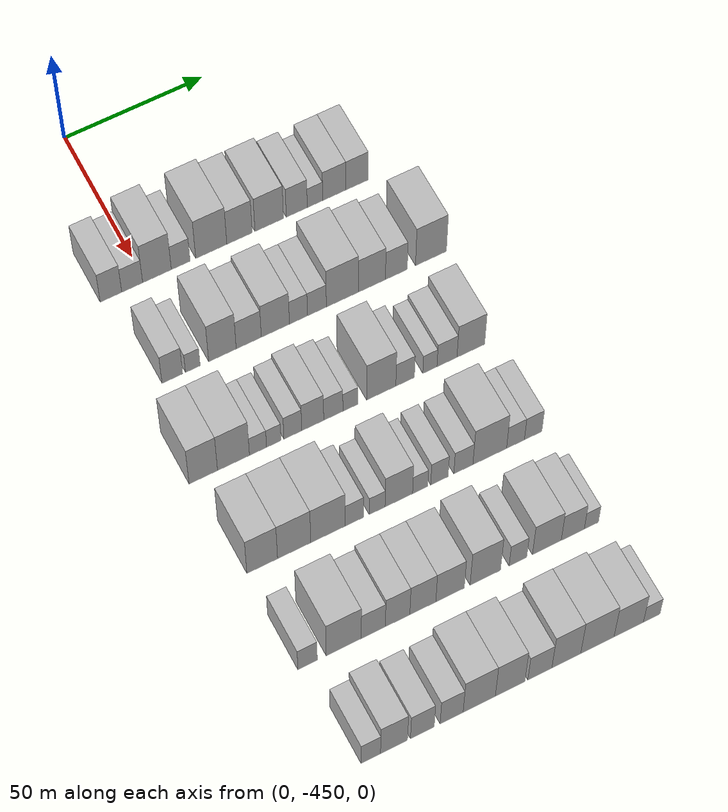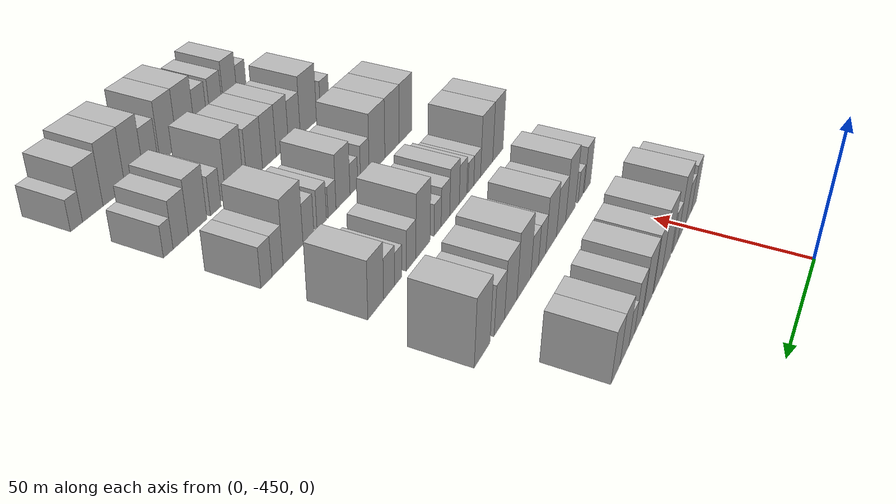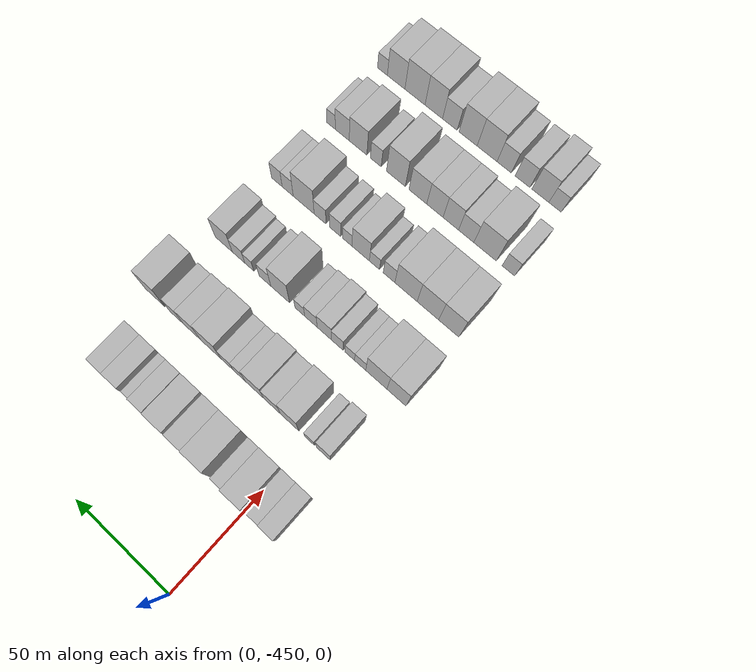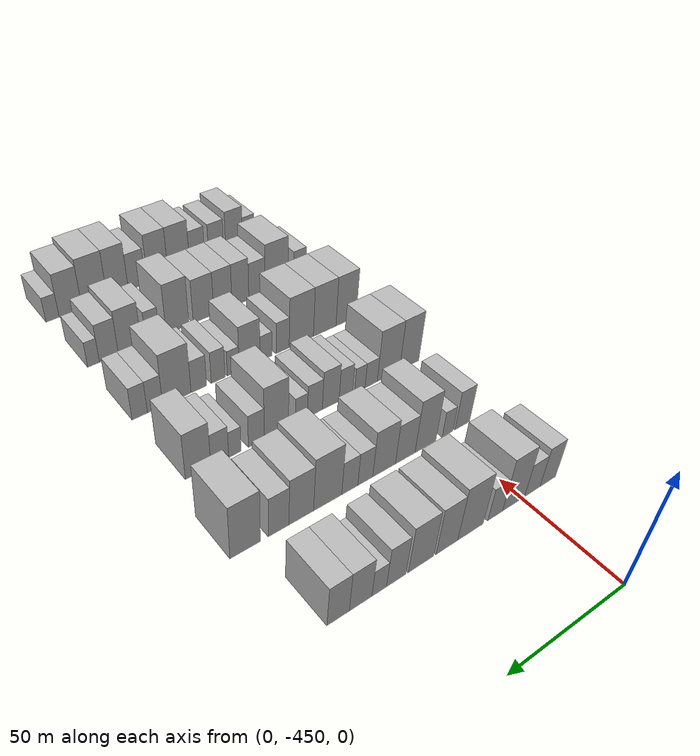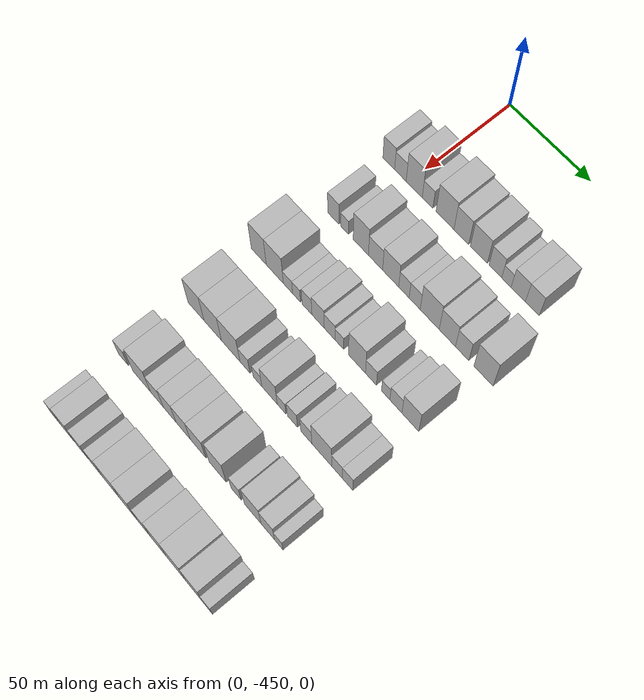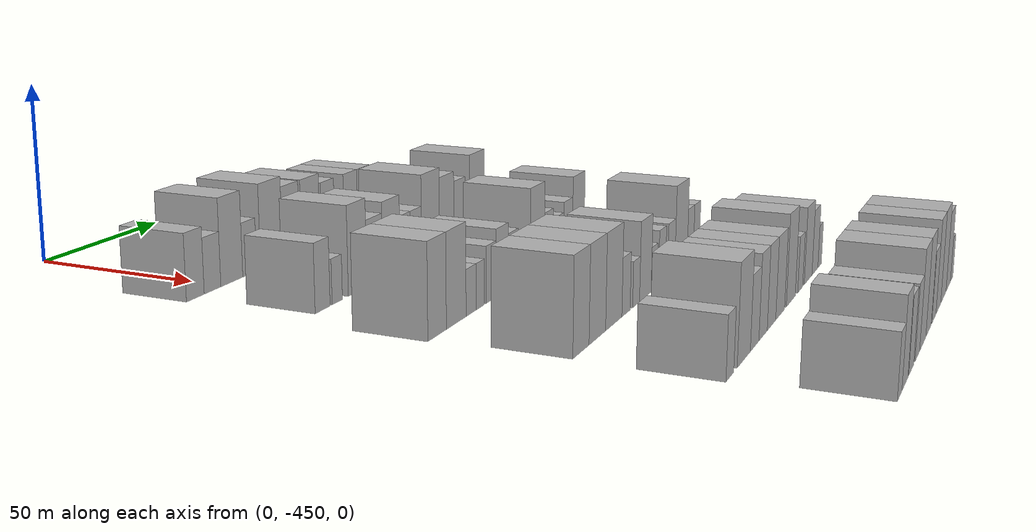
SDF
<sdf version="1.6">
 <world name="default">
  <model name="building_14">
   <static>1</static>
   <pose>50.0000 -462.1578 0 0.000000 0.000000 0.000000</pose>
   <link name="link">
    <pose>0 0 9.00 0 0 0</pose>
    <collision name="collision"><geometry><box><size>20.0000 7.6414 18.0000</size></box></geometry></collision>
    <visual name="visual">
     <cast_shadows>0</cast_shadows>
     <geometry><box><size>20.0000 7.6414 18.0000</size></box></geometry>
     <material>
      <script>
       <uri>model://HANNAS_wall/materials/scripts</uri>
       <uri>model://HANNAS_wall/materials/textures</uri>
       <name>vrc/HANNAS_wall</name>
      </script>
     </material>
    </visual>
   </link>
  </model>
  <model name="building_15">
   <static>1</static>
   <pose>50.0000 -454.6334 0 0.000000 0.000000 0.000000</pose>
   <link name="link">
    <pose>0 0 7.50 0 0 0</pose>
    <collision name="collision"><geometry><box><size>20.0000 7.4073 15.0000</size></box></geometry></collision>
    <visual name="visual">
     <cast_shadows>0</cast_shadows>
     <geometry><box><size>20.0000 7.4073 15.0000</size></box></geometry>
     <material>
      <script>
       <uri>model://HANNAS_wall/materials/scripts</uri>
       <uri>model://HANNAS_wall/materials/textures</uri>
       <name>vrc/HANNAS_wall</name>
      </script>
     </material>
    </visual>
   </link>
  </model>
  <model name="building_16">
   <static>1</static>
   <pose>50.0000 -445.8312 0 0.000000 0.000000 0.000000</pose>
   <link name="link">
    <pose>0 0 12.00 0 0 0</pose>
    <collision name="collision"><geometry><box><size>20.0000 10.1972 24.0000</size></box></geometry></collision>
    <visual name="visual">
     <cast_shadows>0</cast_shadows>
     <geometry><box><size>20.0000 10.1972 24.0000</size></box></geometry>
     <material>
      <script>
       <uri>model://HANNAS_wall/materials/scripts</uri>
       <uri>model://HANNAS_wall/materials/textures</uri>
       <name>vrc/HANNAS_wall</name>
      </script>
     </material>
    </visual>
   </link>
  </model>
  <model name="building_17">
   <static>1</static>
   <pose>50.0000 -437.3728 0 0.000000 0.000000 0.000000</pose>
   <link name="link">
    <pose>0 0 7.50 0 0 0</pose>
    <collision name="collision"><geometry><box><size>20.0000 6.7195 15.0000</size></box></geometry></collision>
    <visual name="visual">
     <cast_shadows>0</cast_shadows>
     <geometry><box><size>20.0000 6.7195 15.0000</size></box></geometry>
     <material>
      <script>
       <uri>model://HANNAS_wall/materials/scripts</uri>
       <uri>model://HANNAS_wall/materials/textures</uri>
       <name>vrc/HANNAS_wall</name>
      </script>
     </material>
    </visual>
   </link>
  </model>
  <model name="building_18">
   <static>1</static>
   <pose>50.0000 -426.4375 0 0.000000 0.000000 0.000000</pose>
   <link name="link">
    <pose>0 0 12.00 0 0 0</pose>
    <collision name="collision"><geometry><box><size>20.0000 11.1511 24.0000</size></box></geometry></collision>
    <visual name="visual">
     <cast_shadows>0</cast_shadows>
     <geometry><box><size>20.0000 11.1511 24.0000</size></box></geometry>
     <material>
      <script>
       <uri>model://HANNAS_wall/materials/scripts</uri>
       <uri>model://HANNAS_wall/materials/textures</uri>
       <name>vrc/HANNAS_wall</name>
      </script>
     </material>
    </visual>
   </link>
  </model>
  <model name="building_19">
   <static>1</static>
   <pose>50.0000 -416.2968 0 0.000000 0.000000 0.000000</pose>
   <link name="link">
    <pose>0 0 10.50 0 0 0</pose>
    <collision name="collision"><geometry><box><size>20.0000 9.1303 21.0000</size></box></geometry></collision>
    <visual name="visual">
     <cast_shadows>0</cast_shadows>
     <geometry><box><size>20.0000 9.1303 21.0000</size></box></geometry>
     <material>
      <script>
       <uri>model://HANNAS_wall/materials/scripts</uri>
       <uri>model://HANNAS_wall/materials/textures</uri>
       <name>vrc/HANNAS_wall</name>
      </script>
     </material>
    </visual>
   </link>
  </model>
  <model name="building_20">
   <static>1</static>
   <pose>50.0000 -405.5676 0 0.000000 0.000000 0.000000</pose>
   <link name="link">
    <pose>0 0 10.50 0 0 0</pose>
    <collision name="collision"><geometry><box><size>20.0000 10.3282 21.0000</size></box></geometry></collision>
    <visual name="visual">
     <cast_shadows>0</cast_shadows>
     <geometry><box><size>20.0000 10.3282 21.0000</size></box></geometry>
     <material>
      <script>
       <uri>model://HANNAS_wall/materials/scripts</uri>
       <uri>model://HANNAS_wall/materials/textures</uri>
       <name>vrc/HANNAS_wall</name>
      </script>
     </material>
    </visual>
   </link>
  </model>
  <model name="building_21">
   <static>1</static>
   <pose>50.0000 -395.5879 0 0.000000 0.000000 0.000000</pose>
   <link name="link">
    <pose>0 0 9.00 0 0 0</pose>
    <collision name="collision"><geometry><box><size>20.0000 7.6313 18.0000</size></box></geometry></collision>
    <visual name="visual">
     <cast_shadows>0</cast_shadows>
     <geometry><box><size>20.0000 7.6313 18.0000</size></box></geometry>
     <material>
      <script>
       <uri>model://HANNAS_wall/materials/scripts</uri>
       <uri>model://HANNAS_wall/materials/textures</uri>
       <name>vrc/HANNAS_wall</name>
      </script>
     </material>
    </visual>
   </link>
  </model>
  <model name="building_22">
   <static>1</static>
   <pose>50.0000 -388.9683 0 0.000000 0.000000 0.000000</pose>
   <link name="link">
    <pose>0 0 6.00 0 0 0</pose>
    <collision name="collision"><geometry><box><size>20.0000 5.6079 12.0000</size></box></geometry></collision>
    <visual name="visual">
     <cast_shadows>0</cast_shadows>
     <geometry><box><size>20.0000 5.6079 12.0000</size></box></geometry>
     <material>
      <script>
       <uri>model://HANNAS_wall/materials/scripts</uri>
       <uri>model://HANNAS_wall/materials/textures</uri>
       <name>vrc/HANNAS_wall</name>
      </script>
     </material>
    </visual>
   </link>
  </model>
  <model name="building_23">
   <static>1</static>
   <pose>50.0000 -381.9288 0 0.000000 0.000000 0.000000</pose>
   <link name="link">
    <pose>0 0 9.00 0 0 0</pose>
    <collision name="collision"><geometry><box><size>20.0000 8.4710 18.0000</size></box></geometry></collision>
    <visual name="visual">
     <cast_shadows>0</cast_shadows>
     <geometry><box><size>20.0000 8.4710 18.0000</size></box></geometry>
     <material>
      <script>
       <uri>model://HANNAS_wall/materials/scripts</uri>
       <uri>model://HANNAS_wall/materials/textures</uri>
       <name>vrc/HANNAS_wall</name>
      </script>
     </material>
    </visual>
   </link>
  </model>
  <model name="building_24">
   <static>1</static>
   <pose>50.0000 -373.6209 0 0.000000 0.000000 0.000000</pose>
   <link name="link">
    <pose>0 0 9.00 0 0 0</pose>
    <collision name="collision"><geometry><box><size>20.0000 8.1449 18.0000</size></box></geometry></collision>
    <visual name="visual">
     <cast_shadows>0</cast_shadows>
     <geometry><box><size>20.0000 8.1449 18.0000</size></box></geometry>
     <material>
      <script>
       <uri>model://HANNAS_wall/materials/scripts</uri>
       <uri>model://HANNAS_wall/materials/textures</uri>
       <name>vrc/HANNAS_wall</name>
      </script>
     </material>
    </visual>
   </link>
  </model>
  <model name="building_138">
   <static>1</static>
   <pose>85.0000 -457.6030 0 0.000000 0.000000 0.000000</pose>
   <link name="link">
    <pose>0 0 9.00 0 0 0</pose>
    <collision name="collision"><geometry><box><size>20.0000 7.2241 18.0000</size></box></geometry></collision>
    <visual name="visual">
     <cast_shadows>0</cast_shadows>
     <geometry><box><size>20.0000 7.2241 18.0000</size></box></geometry>
     <material>
      <script>
       <uri>model://HANNAS_wall/materials/scripts</uri>
       <uri>model://HANNAS_wall/materials/textures</uri>
       <name>vrc/HANNAS_wall</name>
      </script>
     </material>
    </visual>
   </link>
  </model>
  <model name="building_139">
   <static>1</static>
   <pose>85.0000 -450.4035 0 0.000000 0.000000 0.000000</pose>
   <link name="link">
    <pose>0 0 6.00 0 0 0</pose>
    <collision name="collision"><geometry><box><size>20.0000 5.1749 12.0000</size></box></geometry></collision>
    <visual name="visual">
     <cast_shadows>0</cast_shadows>
     <geometry><box><size>20.0000 5.1749 12.0000</size></box></geometry>
     <material>
      <script>
       <uri>model://HANNAS_wall/materials/scripts</uri>
       <uri>model://HANNAS_wall/materials/textures</uri>
       <name>vrc/HANNAS_wall</name>
      </script>
     </material>
    </visual>
   </link>
  </model>
  <model name="building_140">
   <static>1</static>
   <pose>85.0000 -439.9599 0 0.000000 0.000000 0.000000</pose>
   <link name="link">
    <pose>0 0 12.00 0 0 0</pose>
    <collision name="collision"><geometry><box><size>20.0000 9.7124 24.0000</size></box></geometry></collision>
    <visual name="visual">
     <cast_shadows>0</cast_shadows>
     <geometry><box><size>20.0000 9.7124 24.0000</size></box></geometry>
     <material>
      <script>
       <uri>model://HANNAS_wall/materials/scripts</uri>
       <uri>model://HANNAS_wall/materials/textures</uri>
       <name>vrc/HANNAS_wall</name>
      </script>
     </material>
    </visual>
   </link>
  </model>
  <model name="building_141">
   <static>1</static>
   <pose>85.0000 -430.6533 0 0.000000 0.000000 0.000000</pose>
   <link name="link">
    <pose>0 0 9.00 0 0 0</pose>
    <collision name="collision"><geometry><box><size>20.0000 8.9007 18.0000</size></box></geometry></collision>
    <visual name="visual">
     <cast_shadows>0</cast_shadows>
     <geometry><box><size>20.0000 8.9007 18.0000</size></box></geometry>
     <material>
      <script>
       <uri>model://HANNAS_wall/materials/scripts</uri>
       <uri>model://HANNAS_wall/materials/textures</uri>
       <name>vrc/HANNAS_wall</name>
      </script>
     </material>
    </visual>
   </link>
  </model>
  <model name="building_142">
   <static>1</static>
   <pose>85.0000 -421.2011 0 0.000000 0.000000 0.000000</pose>
   <link name="link">
    <pose>0 0 10.50 0 0 0</pose>
    <collision name="collision"><geometry><box><size>20.0000 10.0036 21.0000</size></box></geometry></collision>
    <visual name="visual">
     <cast_shadows>0</cast_shadows>
     <geometry><box><size>20.0000 10.0036 21.0000</size></box></geometry>
     <material>
      <script>
       <uri>model://HANNAS_wall/materials/scripts</uri>
       <uri>model://HANNAS_wall/materials/textures</uri>
       <name>vrc/HANNAS_wall</name>
      </script>
     </material>
    </visual>
   </link>
  </model>
  <model name="building_143">
   <static>1</static>
   <pose>85.0000 -412.9813 0 0.000000 0.000000 0.000000</pose>
   <link name="link">
    <pose>0 0 7.50 0 0 0</pose>
    <collision name="collision"><geometry><box><size>20.0000 6.4360 15.0000</size></box></geometry></collision>
    <visual name="visual">
     <cast_shadows>0</cast_shadows>
     <geometry><box><size>20.0000 6.4360 15.0000</size></box></geometry>
     <material>
      <script>
       <uri>model://HANNAS_wall/materials/scripts</uri>
       <uri>model://HANNAS_wall/materials/textures</uri>
       <name>vrc/HANNAS_wall</name>
      </script>
     </material>
    </visual>
   </link>
  </model>
  <model name="building_144">
   <static>1</static>
   <pose>85.0000 -406.3880 0 0.000000 0.000000 0.000000</pose>
   <link name="link">
    <pose>0 0 7.50 0 0 0</pose>
    <collision name="collision"><geometry><box><size>20.0000 6.7505 15.0000</size></box></geometry></collision>
    <visual name="visual">
     <cast_shadows>0</cast_shadows>
     <geometry><box><size>20.0000 6.7505 15.0000</size></box></geometry>
     <material>
      <script>
       <uri>model://HANNAS_wall/materials/scripts</uri>
       <uri>model://HANNAS_wall/materials/textures</uri>
       <name>vrc/HANNAS_wall</name>
      </script>
     </material>
    </visual>
   </link>
  </model>
  <model name="building_145">
   <static>1</static>
   <pose>85.0000 -397.2478 0 0.000000 0.000000 0.000000</pose>
   <link name="link">
    <pose>0 0 12.00 0 0 0</pose>
    <collision name="collision"><geometry><box><size>20.0000 11.5300 24.0000</size></box></geometry></collision>
    <visual name="visual">
     <cast_shadows>0</cast_shadows>
     <geometry><box><size>20.0000 11.5300 24.0000</size></box></geometry>
     <material>
      <script>
       <uri>model://HANNAS_wall/materials/scripts</uri>
       <uri>model://HANNAS_wall/materials/textures</uri>
       <name>vrc/HANNAS_wall</name>
      </script>
     </material>
    </visual>
   </link>
  </model>
  <model name="building_146">
   <static>1</static>
   <pose>85.0000 -386.6031 0 0.000000 0.000000 0.000000</pose>
   <link name="link">
    <pose>0 0 10.50 0 0 0</pose>
    <collision name="collision"><geometry><box><size>20.0000 9.7594 21.0000</size></box></geometry></collision>
    <visual name="visual">
     <cast_shadows>0</cast_shadows>
     <geometry><box><size>20.0000 9.7594 21.0000</size></box></geometry>
     <material>
      <script>
       <uri>model://HANNAS_wall/materials/scripts</uri>
       <uri>model://HANNAS_wall/materials/textures</uri>
       <name>vrc/HANNAS_wall</name>
      </script>
     </material>
    </visual>
   </link>
  </model>
  <model name="building_147">
   <static>1</static>
   <pose>85.0000 -377.7714 0 0.000000 0.000000 0.000000</pose>
   <link name="link">
    <pose>0 0 9.00 0 0 0</pose>
    <collision name="collision"><geometry><box><size>20.0000 7.9040 18.0000</size></box></geometry></collision>
    <visual name="visual">
     <cast_shadows>0</cast_shadows>
     <geometry><box><size>20.0000 7.9040 18.0000</size></box></geometry>
     <material>
      <script>
       <uri>model://HANNAS_wall/materials/scripts</uri>
       <uri>model://HANNAS_wall/materials/textures</uri>
       <name>vrc/HANNAS_wall</name>
      </script>
     </material>
    </visual>
   </link>
  </model>
  <model name="building_148">
   <static>1</static>
   <pose>85.0000 -365.2009 0 0.000000 0.000000 0.000000</pose>
   <link name="link">
    <pose>0 0 12.00 0 0 0</pose>
    <collision name="collision"><geometry><box><size>20.0000 11.2370 24.0000</size></box></geometry></collision>
    <visual name="visual">
     <cast_shadows>0</cast_shadows>
     <geometry><box><size>20.0000 11.2370 24.0000</size></box></geometry>
     <material>
      <script>
       <uri>model://HANNAS_wall/materials/scripts</uri>
       <uri>model://HANNAS_wall/materials/textures</uri>
       <name>vrc/HANNAS_wall</name>
      </script>
     </material>
    </visual>
   </link>
  </model>
  <model name="building_265">
   <static>1</static>
   <pose>120.0000 -464.1289 0 0.000000 0.000000 0.000000</pose>
   <link name="link">
    <pose>0 0 12.00 0 0 0</pose>
    <collision name="collision"><geometry><box><size>20.0000 9.8482 24.0000</size></box></geometry></collision>
    <visual name="visual">
     <cast_shadows>0</cast_shadows>
     <geometry><box><size>20.0000 9.8482 24.0000</size></box></geometry>
     <material>
      <script>
       <uri>model://HANNAS_wall/materials/scripts</uri>
       <uri>model://HANNAS_wall/materials/textures</uri>
       <name>vrc/HANNAS_wall</name>
      </script>
     </material>
    </visual>
   </link>
  </model>
  <model name="building_266">
   <static>1</static>
   <pose>120.0000 -453.6575 0 0.000000 0.000000 0.000000</pose>
   <link name="link">
    <pose>0 0 12.00 0 0 0</pose>
    <collision name="collision"><geometry><box><size>20.0000 11.0947 24.0000</size></box></geometry></collision>
    <visual name="visual">
     <cast_shadows>0</cast_shadows>
     <geometry><box><size>20.0000 11.0947 24.0000</size></box></geometry>
     <material>
      <script>
       <uri>model://HANNAS_wall/materials/scripts</uri>
       <uri>model://HANNAS_wall/materials/textures</uri>
       <name>vrc/HANNAS_wall</name>
      </script>
     </material>
    </visual>
   </link>
  </model>
  <model name="building_267">
   <static>1</static>
   <pose>120.0000 -445.1340 0 0.000000 0.000000 0.000000</pose>
   <link name="link">
    <pose>0 0 6.00 0 0 0</pose>
    <collision name="collision"><geometry><box><size>20.0000 5.9522 12.0000</size></box></geometry></collision>
    <visual name="visual">
     <cast_shadows>0</cast_shadows>
     <geometry><box><size>20.0000 5.9522 12.0000</size></box></geometry>
     <material>
      <script>
       <uri>model://HANNAS_wall/materials/scripts</uri>
       <uri>model://HANNAS_wall/materials/textures</uri>
       <name>vrc/HANNAS_wall</name>
      </script>
     </material>
    </visual>
   </link>
  </model>
  <model name="building_268">
   <static>1</static>
   <pose>120.0000 -439.6301 0 0.000000 0.000000 0.000000</pose>
   <link name="link">
    <pose>0 0 6.00 0 0 0</pose>
    <collision name="collision"><geometry><box><size>20.0000 5.0557 12.0000</size></box></geometry></collision>
    <visual name="visual">
     <cast_shadows>0</cast_shadows>
     <geometry><box><size>20.0000 5.0557 12.0000</size></box></geometry>
     <material>
      <script>
       <uri>model://HANNAS_wall/materials/scripts</uri>
       <uri>model://HANNAS_wall/materials/textures</uri>
       <name>vrc/HANNAS_wall</name>
      </script>
     </material>
    </visual>
   </link>
  </model>
  <model name="building_269">
   <static>1</static>
   <pose>120.0000 -432.9744 0 0.000000 0.000000 0.000000</pose>
   <link name="link">
    <pose>0 0 7.50 0 0 0</pose>
    <collision name="collision"><geometry><box><size>20.0000 6.2556 15.0000</size></box></geometry></collision>
    <visual name="visual">
     <cast_shadows>0</cast_shadows>
     <geometry><box><size>20.0000 6.2556 15.0000</size></box></geometry>
     <material>
      <script>
       <uri>model://HANNAS_wall/materials/scripts</uri>
       <uri>model://HANNAS_wall/materials/textures</uri>
       <name>vrc/HANNAS_wall</name>
      </script>
     </material>
    </visual>
   </link>
  </model>
  <model name="building_270">
   <static>1</static>
   <pose>120.0000 -425.9820 0 0.000000 0.000000 0.000000</pose>
   <link name="link">
    <pose>0 0 9.00 0 0 0</pose>
    <collision name="collision"><geometry><box><size>20.0000 7.7292 18.0000</size></box></geometry></collision>
    <visual name="visual">
     <cast_shadows>0</cast_shadows>
     <geometry><box><size>20.0000 7.7292 18.0000</size></box></geometry>
     <material>
      <script>
       <uri>model://HANNAS_wall/materials/scripts</uri>
       <uri>model://HANNAS_wall/materials/textures</uri>
       <name>vrc/HANNAS_wall</name>
      </script>
     </material>
    </visual>
   </link>
  </model>
  <model name="building_271">
   <static>1</static>
   <pose>120.0000 -418.7403 0 0.000000 0.000000 0.000000</pose>
   <link name="link">
    <pose>0 0 7.50 0 0 0</pose>
    <collision name="collision"><geometry><box><size>20.0000 6.7542 15.0000</size></box></geometry></collision>
    <visual name="visual">
     <cast_shadows>0</cast_shadows>
     <geometry><box><size>20.0000 6.7542 15.0000</size></box></geometry>
     <material>
      <script>
       <uri>model://HANNAS_wall/materials/scripts</uri>
       <uri>model://HANNAS_wall/materials/textures</uri>
       <name>vrc/HANNAS_wall</name>
      </script>
     </material>
    </visual>
   </link>
  </model>
  <model name="building_272">
   <static>1</static>
   <pose>120.0000 -412.6711 0 0.000000 0.000000 0.000000</pose>
   <link name="link">
    <pose>0 0 6.00 0 0 0</pose>
    <collision name="collision"><geometry><box><size>20.0000 5.3841 12.0000</size></box></geometry></collision>
    <visual name="visual">
     <cast_shadows>0</cast_shadows>
     <geometry><box><size>20.0000 5.3841 12.0000</size></box></geometry>
     <material>
      <script>
       <uri>model://HANNAS_wall/materials/scripts</uri>
       <uri>model://HANNAS_wall/materials/textures</uri>
       <name>vrc/HANNAS_wall</name>
      </script>
     </material>
    </visual>
   </link>
  </model>
  <model name="building_273">
   <static>1</static>
   <pose>120.0000 -401.7876 0 0.000000 0.000000 0.000000</pose>
   <link name="link">
    <pose>0 0 12.00 0 0 0</pose>
    <collision name="collision"><geometry><box><size>20.0000 10.3829 24.0000</size></box></geometry></collision>
    <visual name="visual">
     <cast_shadows>0</cast_shadows>
     <geometry><box><size>20.0000 10.3829 24.0000</size></box></geometry>
     <material>
      <script>
       <uri>model://HANNAS_wall/materials/scripts</uri>
       <uri>model://HANNAS_wall/materials/textures</uri>
       <name>vrc/HANNAS_wall</name>
      </script>
     </material>
    </visual>
   </link>
  </model>
  <model name="building_274">
   <static>1</static>
   <pose>120.0000 -393.2822 0 0.000000 0.000000 0.000000</pose>
   <link name="link">
    <pose>0 0 7.50 0 0 0</pose>
    <collision name="collision"><geometry><box><size>20.0000 6.6279 15.0000</size></box></geometry></collision>
    <visual name="visual">
     <cast_shadows>0</cast_shadows>
     <geometry><box><size>20.0000 6.6279 15.0000</size></box></geometry>
     <material>
      <script>
       <uri>model://HANNAS_wall/materials/scripts</uri>
       <uri>model://HANNAS_wall/materials/textures</uri>
       <name>vrc/HANNAS_wall</name>
      </script>
     </material>
    </visual>
   </link>
  </model>
  <model name="building_275">
   <static>1</static>
   <pose>120.0000 -384.4343 0 0.000000 0.000000 0.000000</pose>
   <link name="link">
    <pose>0 0 6.00 0 0 0</pose>
    <collision name="collision"><geometry><box><size>20.0000 5.0679 12.0000</size></box></geometry></collision>
    <visual name="visual">
     <cast_shadows>0</cast_shadows>
     <geometry><box><size>20.0000 5.0679 12.0000</size></box></geometry>
     <material>
      <script>
       <uri>model://HANNAS_wall/materials/scripts</uri>
       <uri>model://HANNAS_wall/materials/textures</uri>
       <name>vrc/HANNAS_wall</name>
      </script>
     </material>
    </visual>
   </link>
  </model>
  <model name="building_276">
   <static>1</static>
   <pose>120.0000 -378.3133 0 0.000000 0.000000 0.000000</pose>
   <link name="link">
    <pose>0 0 7.50 0 0 0</pose>
    <collision name="collision"><geometry><box><size>20.0000 7.1740 15.0000</size></box></geometry></collision>
    <visual name="visual">
     <cast_shadows>0</cast_shadows>
     <geometry><box><size>20.0000 7.1740 15.0000</size></box></geometry>
     <material>
      <script>
       <uri>model://HANNAS_wall/materials/scripts</uri>
       <uri>model://HANNAS_wall/materials/textures</uri>
       <name>vrc/HANNAS_wall</name>
      </script>
     </material>
    </visual>
   </link>
  </model>
  <model name="building_277">
   <static>1</static>
   <pose>120.0000 -369.7561 0 0.000000 0.000000 0.000000</pose>
   <link name="link">
    <pose>0 0 10.50 0 0 0</pose>
    <collision name="collision"><geometry><box><size>20.0000 9.9404 21.0000</size></box></geometry></collision>
    <visual name="visual">
     <cast_shadows>0</cast_shadows>
     <geometry><box><size>20.0000 9.9404 21.0000</size></box></geometry>
     <material>
      <script>
       <uri>model://HANNAS_wall/materials/scripts</uri>
       <uri>model://HANNAS_wall/materials/textures</uri>
       <name>vrc/HANNAS_wall</name>
      </script>
     </material>
    </visual>
   </link>
  </model>
  <model name="building_391">
   <static>1</static>
   <pose>155.0000 -461.4558 0 0.000000 0.000000 0.000000</pose>
   <link name="link">
    <pose>0 0 12.00 0 0 0</pose>
    <collision name="collision"><geometry><box><size>20.0000 10.5124 24.0000</size></box></geometry></collision>
    <visual name="visual">
     <cast_shadows>0</cast_shadows>
     <geometry><box><size>20.0000 10.5124 24.0000</size></box></geometry>
     <material>
      <script>
       <uri>model://HANNAS_wall/materials/scripts</uri>
       <uri>model://HANNAS_wall/materials/textures</uri>
       <name>vrc/HANNAS_wall</name>
      </script>
     </material>
    </visual>
   </link>
  </model>
  <model name="building_392">
   <static>1</static>
   <pose>155.0000 -450.4864 0 0.000000 0.000000 0.000000</pose>
   <link name="link">
    <pose>0 0 12.00 0 0 0</pose>
    <collision name="collision"><geometry><box><size>20.0000 11.4264 24.0000</size></box></geometry></collision>
    <visual name="visual">
     <cast_shadows>0</cast_shadows>
     <geometry><box><size>20.0000 11.4264 24.0000</size></box></geometry>
     <material>
      <script>
       <uri>model://HANNAS_wall/materials/scripts</uri>
       <uri>model://HANNAS_wall/materials/textures</uri>
       <name>vrc/HANNAS_wall</name>
      </script>
     </material>
    </visual>
   </link>
  </model>
  <model name="building_393">
   <static>1</static>
   <pose>155.0000 -438.8093 0 0.000000 0.000000 0.000000</pose>
   <link name="link">
    <pose>0 0 12.00 0 0 0</pose>
    <collision name="collision"><geometry><box><size>20.0000 11.9278 24.0000</size></box></geometry></collision>
    <visual name="visual">
     <cast_shadows>0</cast_shadows>
     <geometry><box><size>20.0000 11.9278 24.0000</size></box></geometry>
     <material>
      <script>
       <uri>model://HANNAS_wall/materials/scripts</uri>
       <uri>model://HANNAS_wall/materials/textures</uri>
       <name>vrc/HANNAS_wall</name>
      </script>
     </material>
    </visual>
   </link>
  </model>
  <model name="building_394">
   <static>1</static>
   <pose>155.0000 -429.6800 0 0.000000 0.000000 0.000000</pose>
   <link name="link">
    <pose>0 0 7.50 0 0 0</pose>
    <collision name="collision"><geometry><box><size>20.0000 6.3308 15.0000</size></box></geometry></collision>
    <visual name="visual">
     <cast_shadows>0</cast_shadows>
     <geometry><box><size>20.0000 6.3308 15.0000</size></box></geometry>
     <material>
      <script>
       <uri>model://HANNAS_wall/materials/scripts</uri>
       <uri>model://HANNAS_wall/materials/textures</uri>
       <name>vrc/HANNAS_wall</name>
      </script>
     </material>
    </visual>
   </link>
  </model>
  <model name="building_395">
   <static>1</static>
   <pose>155.0000 -421.7460 0 0.000000 0.000000 0.000000</pose>
   <link name="link">
    <pose>0 0 6.00 0 0 0</pose>
    <collision name="collision"><geometry><box><size>20.0000 5.5372 12.0000</size></box></geometry></collision>
    <visual name="visual">
     <cast_shadows>0</cast_shadows>
     <geometry><box><size>20.0000 5.5372 12.0000</size></box></geometry>
     <material>
      <script>
       <uri>model://HANNAS_wall/materials/scripts</uri>
       <uri>model://HANNAS_wall/materials/textures</uri>
       <name>vrc/HANNAS_wall</name>
      </script>
     </material>
    </visual>
   </link>
  </model>
  <model name="building_396">
   <static>1</static>
   <pose>155.0000 -414.1706 0 0.000000 0.000000 0.000000</pose>
   <link name="link">
    <pose>0 0 10.50 0 0 0</pose>
    <collision name="collision"><geometry><box><size>20.0000 9.6136 21.0000</size></box></geometry></collision>
    <visual name="visual">
     <cast_shadows>0</cast_shadows>
     <geometry><box><size>20.0000 9.6136 21.0000</size></box></geometry>
     <material>
      <script>
       <uri>model://HANNAS_wall/materials/scripts</uri>
       <uri>model://HANNAS_wall/materials/textures</uri>
       <name>vrc/HANNAS_wall</name>
      </script>
     </material>
    </visual>
   </link>
  </model>
  <model name="building_397">
   <static>1</static>
   <pose>155.0000 -406.6958 0 0.000000 0.000000 0.000000</pose>
   <link name="link">
    <pose>0 0 6.00 0 0 0</pose>
    <collision name="collision"><geometry><box><size>20.0000 5.3359 12.0000</size></box></geometry></collision>
    <visual name="visual">
     <cast_shadows>0</cast_shadows>
     <geometry><box><size>20.0000 5.3359 12.0000</size></box></geometry>
     <material>
      <script>
       <uri>model://HANNAS_wall/materials/scripts</uri>
       <uri>model://HANNAS_wall/materials/textures</uri>
       <name>vrc/HANNAS_wall</name>
      </script>
     </material>
    </visual>
   </link>
  </model>
  <model name="building_398">
   <static>1</static>
   <pose>155.0000 -399.9539 0 0.000000 0.000000 0.000000</pose>
   <link name="link">
    <pose>0 0 7.50 0 0 0</pose>
    <collision name="collision"><geometry><box><size>20.0000 6.1478 15.0000</size></box></geometry></collision>
    <visual name="visual">
     <cast_shadows>0</cast_shadows>
     <geometry><box><size>20.0000 6.1478 15.0000</size></box></geometry>
     <material>
      <script>
       <uri>model://HANNAS_wall/materials/scripts</uri>
       <uri>model://HANNAS_wall/materials/textures</uri>
       <name>vrc/HANNAS_wall</name>
      </script>
     </material>
    </visual>
   </link>
  </model>
  <model name="building_399">
   <static>1</static>
   <pose>155.0000 -391.5040 0 0.000000 0.000000 0.000000</pose>
   <link name="link">
    <pose>0 0 7.50 0 0 0</pose>
    <collision name="collision"><geometry><box><size>20.0000 6.7520 15.0000</size></box></geometry></collision>
    <visual name="visual">
     <cast_shadows>0</cast_shadows>
     <geometry><box><size>20.0000 6.7520 15.0000</size></box></geometry>
     <material>
      <script>
       <uri>model://HANNAS_wall/materials/scripts</uri>
       <uri>model://HANNAS_wall/materials/textures</uri>
       <name>vrc/HANNAS_wall</name>
      </script>
     </material>
    </visual>
   </link>
  </model>
  <model name="building_400">
   <static>1</static>
   <pose>155.0000 -382.1593 0 0.000000 0.000000 0.000000</pose>
   <link name="link">
    <pose>0 0 12.00 0 0 0</pose>
    <collision name="collision"><geometry><box><size>20.0000 11.9374 24.0000</size></box></geometry></collision>
    <visual name="visual">
     <cast_shadows>0</cast_shadows>
     <geometry><box><size>20.0000 11.9374 24.0000</size></box></geometry>
     <material>
      <script>
       <uri>model://HANNAS_wall/materials/scripts</uri>
       <uri>model://HANNAS_wall/materials/textures</uri>
       <name>vrc/HANNAS_wall</name>
      </script>
     </material>
    </visual>
   </link>
  </model>
  <model name="building_401">
   <static>1</static>
   <pose>155.0000 -373.0130 0 0.000000 0.000000 0.000000</pose>
   <link name="link">
    <pose>0 0 7.50 0 0 0</pose>
    <collision name="collision"><geometry><box><size>20.0000 6.3552 15.0000</size></box></geometry></collision>
    <visual name="visual">
     <cast_shadows>0</cast_shadows>
     <geometry><box><size>20.0000 6.3552 15.0000</size></box></geometry>
     <material>
      <script>
       <uri>model://HANNAS_wall/materials/scripts</uri>
       <uri>model://HANNAS_wall/materials/textures</uri>
       <name>vrc/HANNAS_wall</name>
      </script>
     </material>
    </visual>
   </link>
  </model>
  <model name="building_402">
   <static>1</static>
   <pose>155.0000 -366.7232 0 0.000000 0.000000 0.000000</pose>
   <link name="link">
    <pose>0 0 7.50 0 0 0</pose>
    <collision name="collision"><geometry><box><size>20.0000 6.2244 15.0000</size></box></geometry></collision>
    <visual name="visual">
     <cast_shadows>0</cast_shadows>
     <geometry><box><size>20.0000 6.2244 15.0000</size></box></geometry>
     <material>
      <script>
       <uri>model://HANNAS_wall/materials/scripts</uri>
       <uri>model://HANNAS_wall/materials/textures</uri>
       <name>vrc/HANNAS_wall</name>
      </script>
     </material>
    </visual>
   </link>
  </model>
  <model name="building_523">
   <static>1</static>
   <pose>190.0000 -463.9323 0 0.000000 0.000000 0.000000</pose>
   <link name="link">
    <pose>0 0 7.50 0 0 0</pose>
    <collision name="collision"><geometry><box><size>20.0000 6.5974 15.0000</size></box></geometry></collision>
    <visual name="visual">
     <cast_shadows>0</cast_shadows>
     <geometry><box><size>20.0000 6.5974 15.0000</size></box></geometry>
     <material>
      <script>
       <uri>model://HANNAS_wall/materials/scripts</uri>
       <uri>model://HANNAS_wall/materials/textures</uri>
       <name>vrc/HANNAS_wall</name>
      </script>
     </material>
    </visual>
   </link>
  </model>
  <model name="building_524">
   <static>1</static>
   <pose>190.0000 -451.6617 0 0.000000 0.000000 0.000000</pose>
   <link name="link">
    <pose>0 0 12.00 0 0 0</pose>
    <collision name="collision"><geometry><box><size>20.0000 11.9437 24.0000</size></box></geometry></collision>
    <visual name="visual">
     <cast_shadows>0</cast_shadows>
     <geometry><box><size>20.0000 11.9437 24.0000</size></box></geometry>
     <material>
      <script>
       <uri>model://HANNAS_wall/materials/scripts</uri>
       <uri>model://HANNAS_wall/materials/textures</uri>
       <name>vrc/HANNAS_wall</name>
      </script>
     </material>
    </visual>
   </link>
  </model>
  <model name="building_525">
   <static>1</static>
   <pose>190.0000 -441.5719 0 0.000000 0.000000 0.000000</pose>
   <link name="link">
    <pose>0 0 9.00 0 0 0</pose>
    <collision name="collision"><geometry><box><size>20.0000 8.2359 18.0000</size></box></geometry></collision>
    <visual name="visual">
     <cast_shadows>0</cast_shadows>
     <geometry><box><size>20.0000 8.2359 18.0000</size></box></geometry>
     <material>
      <script>
       <uri>model://HANNAS_wall/materials/scripts</uri>
       <uri>model://HANNAS_wall/materials/textures</uri>
       <name>vrc/HANNAS_wall</name>
      </script>
     </material>
    </visual>
   </link>
  </model>
  <model name="building_526">
   <static>1</static>
   <pose>190.0000 -433.2486 0 0.000000 0.000000 0.000000</pose>
   <link name="link">
    <pose>0 0 10.50 0 0 0</pose>
    <collision name="collision"><geometry><box><size>20.0000 8.4108 21.0000</size></box></geometry></collision>
    <visual name="visual">
     <cast_shadows>0</cast_shadows>
     <geometry><box><size>20.0000 8.4108 21.0000</size></box></geometry>
     <material>
      <script>
       <uri>model://HANNAS_wall/materials/scripts</uri>
       <uri>model://HANNAS_wall/materials/textures</uri>
       <name>vrc/HANNAS_wall</name>
      </script>
     </material>
    </visual>
   </link>
  </model>
  <model name="building_527">
   <static>1</static>
   <pose>190.0000 -424.5678 0 0.000000 0.000000 0.000000</pose>
   <link name="link">
    <pose>0 0 10.50 0 0 0</pose>
    <collision name="collision"><geometry><box><size>20.0000 8.9508 21.0000</size></box></geometry></collision>
    <visual name="visual">
     <cast_shadows>0</cast_shadows>
     <geometry><box><size>20.0000 8.9508 21.0000</size></box></geometry>
     <material>
      <script>
       <uri>model://HANNAS_wall/materials/scripts</uri>
       <uri>model://HANNAS_wall/materials/textures</uri>
       <name>vrc/HANNAS_wall</name>
      </script>
     </material>
    </visual>
   </link>
  </model>
  <model name="building_528">
   <static>1</static>
   <pose>190.0000 -415.1696 0 0.000000 0.000000 0.000000</pose>
   <link name="link">
    <pose>0 0 10.50 0 0 0</pose>
    <collision name="collision"><geometry><box><size>20.0000 9.8456 21.0000</size></box></geometry></collision>
    <visual name="visual">
     <cast_shadows>0</cast_shadows>
     <geometry><box><size>20.0000 9.8456 21.0000</size></box></geometry>
     <material>
      <script>
       <uri>model://HANNAS_wall/materials/scripts</uri>
       <uri>model://HANNAS_wall/materials/textures</uri>
       <name>vrc/HANNAS_wall</name>
      </script>
     </material>
    </visual>
   </link>
  </model>
  <model name="building_529">
   <static>1</static>
   <pose>190.0000 -402.9540 0 0.000000 0.000000 0.000000</pose>
   <link name="link">
    <pose>0 0 12.00 0 0 0</pose>
    <collision name="collision"><geometry><box><size>20.0000 10.5856 24.0000</size></box></geometry></collision>
    <visual name="visual">
     <cast_shadows>0</cast_shadows>
     <geometry><box><size>20.0000 10.5856 24.0000</size></box></geometry>
     <material>
      <script>
       <uri>model://HANNAS_wall/materials/scripts</uri>
       <uri>model://HANNAS_wall/materials/textures</uri>
       <name>vrc/HANNAS_wall</name>
      </script>
     </material>
    </visual>
   </link>
  </model>
  <model name="building_530">
   <static>1</static>
   <pose>190.0000 -391.5841 0 0.000000 0.000000 0.000000</pose>
   <link name="link">
    <pose>0 0 7.50 0 0 0</pose>
    <collision name="collision"><geometry><box><size>20.0000 6.1542 15.0000</size></box></geometry></collision>
    <visual name="visual">
     <cast_shadows>0</cast_shadows>
     <geometry><box><size>20.0000 6.1542 15.0000</size></box></geometry>
     <material>
      <script>
       <uri>model://HANNAS_wall/materials/scripts</uri>
       <uri>model://HANNAS_wall/materials/textures</uri>
       <name>vrc/HANNAS_wall</name>
      </script>
     </material>
    </visual>
   </link>
  </model>
  <model name="building_531">
   <static>1</static>
   <pose>190.0000 -381.4448 0 0.000000 0.000000 0.000000</pose>
   <link name="link">
    <pose>0 0 10.50 0 0 0</pose>
    <collision name="collision"><geometry><box><size>20.0000 10.1244 21.0000</size></box></geometry></collision>
    <visual name="visual">
     <cast_shadows>0</cast_shadows>
     <geometry><box><size>20.0000 10.1244 21.0000</size></box></geometry>
     <material>
      <script>
       <uri>model://HANNAS_wall/materials/scripts</uri>
       <uri>model://HANNAS_wall/materials/textures</uri>
       <name>vrc/HANNAS_wall</name>
      </script>
     </material>
    </visual>
   </link>
  </model>
  <model name="building_532">
   <static>1</static>
   <pose>190.0000 -372.3256 0 0.000000 0.000000 0.000000</pose>
   <link name="link">
    <pose>0 0 9.00 0 0 0</pose>
    <collision name="collision"><geometry><box><size>20.0000 8.1141 18.0000</size></box></geometry></collision>
    <visual name="visual">
     <cast_shadows>0</cast_shadows>
     <geometry><box><size>20.0000 8.1141 18.0000</size></box></geometry>
     <material>
      <script>
       <uri>model://HANNAS_wall/materials/scripts</uri>
       <uri>model://HANNAS_wall/materials/textures</uri>
       <name>vrc/HANNAS_wall</name>
      </script>
     </material>
    </visual>
   </link>
  </model>
  <model name="building_533">
   <static>1</static>
   <pose>190.0000 -365.7773 0 0.000000 0.000000 0.000000</pose>
   <link name="link">
    <pose>0 0 6.00 0 0 0</pose>
    <collision name="collision"><geometry><box><size>20.0000 4.9826 12.0000</size></box></geometry></collision>
    <visual name="visual">
     <cast_shadows>0</cast_shadows>
     <geometry><box><size>20.0000 4.9826 12.0000</size></box></geometry>
     <material>
      <script>
       <uri>model://HANNAS_wall/materials/scripts</uri>
       <uri>model://HANNAS_wall/materials/textures</uri>
       <name>vrc/HANNAS_wall</name>
      </script>
     </material>
    </visual>
   </link>
  </model>
  <model name="building_649">
   <static>1</static>
   <pose>225.0000 -460.9066 0 0.000000 0.000000 0.000000</pose>
   <link name="link">
    <pose>0 0 7.50 0 0 0</pose>
    <collision name="collision"><geometry><box><size>20.0000 6.5480 15.0000</size></box></geometry></collision>
    <visual name="visual">
     <cast_shadows>0</cast_shadows>
     <geometry><box><size>20.0000 6.5480 15.0000</size></box></geometry>
     <material>
      <script>
       <uri>model://HANNAS_wall/materials/scripts</uri>
       <uri>model://HANNAS_wall/materials/textures</uri>
       <name>vrc/HANNAS_wall</name>
      </script>
     </material>
    </visual>
   </link>
  </model>
  <model name="building_650">
   <static>1</static>
   <pose>225.0000 -453.0938 0 0.000000 0.000000 0.000000</pose>
   <link name="link">
    <pose>0 0 10.50 0 0 0</pose>
    <collision name="collision"><geometry><box><size>20.0000 9.0777 21.0000</size></box></geometry></collision>
    <visual name="visual">
     <cast_shadows>0</cast_shadows>
     <geometry><box><size>20.0000 9.0777 21.0000</size></box></geometry>
     <material>
      <script>
       <uri>model://HANNAS_wall/materials/scripts</uri>
       <uri>model://HANNAS_wall/materials/textures</uri>
       <name>vrc/HANNAS_wall</name>
      </script>
     </material>
    </visual>
   </link>
  </model>
  <model name="building_651">
   <static>1</static>
   <pose>225.0000 -443.5388 0 0.000000 0.000000 0.000000</pose>
   <link name="link">
    <pose>0 0 9.00 0 0 0</pose>
    <collision name="collision"><geometry><box><size>20.0000 8.0323 18.0000</size></box></geometry></collision>
    <visual name="visual">
     <cast_shadows>0</cast_shadows>
     <geometry><box><size>20.0000 8.0323 18.0000</size></box></geometry>
     <material>
      <script>
       <uri>model://HANNAS_wall/materials/scripts</uri>
       <uri>model://HANNAS_wall/materials/textures</uri>
       <name>vrc/HANNAS_wall</name>
      </script>
     </material>
    </visual>
   </link>
  </model>
  <model name="building_652">
   <static>1</static>
   <pose>225.0000 -433.6189 0 0.000000 0.000000 0.000000</pose>
   <link name="link">
    <pose>0 0 9.00 0 0 0</pose>
    <collision name="collision"><geometry><box><size>20.0000 7.8074 18.0000</size></box></geometry></collision>
    <visual name="visual">
     <cast_shadows>0</cast_shadows>
     <geometry><box><size>20.0000 7.8074 18.0000</size></box></geometry>
     <material>
      <script>
       <uri>model://HANNAS_wall/materials/scripts</uri>
       <uri>model://HANNAS_wall/materials/textures</uri>
       <name>vrc/HANNAS_wall</name>
      </script>
     </material>
    </visual>
   </link>
  </model>
  <model name="building_653">
   <static>1</static>
   <pose>225.0000 -424.2224 0 0.000000 0.000000 0.000000</pose>
   <link name="link">
    <pose>0 0 12.00 0 0 0</pose>
    <collision name="collision"><geometry><box><size>20.0000 10.9858 24.0000</size></box></geometry></collision>
    <visual name="visual">
     <cast_shadows>0</cast_shadows>
     <geometry><box><size>20.0000 10.9858 24.0000</size></box></geometry>
     <material>
      <script>
       <uri>model://HANNAS_wall/materials/scripts</uri>
       <uri>model://HANNAS_wall/materials/textures</uri>
       <name>vrc/HANNAS_wall</name>
      </script>
     </material>
    </visual>
   </link>
  </model>
  <model name="building_654">
   <static>1</static>
   <pose>225.0000 -413.6747 0 0.000000 0.000000 0.000000</pose>
   <link name="link">
    <pose>0 0 12.00 0 0 0</pose>
    <collision name="collision"><geometry><box><size>20.0000 10.1094 24.0000</size></box></geometry></collision>
    <visual name="visual">
     <cast_shadows>0</cast_shadows>
     <geometry><box><size>20.0000 10.1094 24.0000</size></box></geometry>
     <material>
      <script>
       <uri>model://HANNAS_wall/materials/scripts</uri>
       <uri>model://HANNAS_wall/materials/textures</uri>
       <name>vrc/HANNAS_wall</name>
      </script>
     </material>
    </visual>
   </link>
  </model>
  <model name="building_655">
   <static>1</static>
   <pose>225.0000 -403.4736 0 0.000000 0.000000 0.000000</pose>
   <link name="link">
    <pose>0 0 9.00 0 0 0</pose>
    <collision name="collision"><geometry><box><size>20.0000 8.2928 18.0000</size></box></geometry></collision>
    <visual name="visual">
     <cast_shadows>0</cast_shadows>
     <geometry><box><size>20.0000 8.2928 18.0000</size></box></geometry>
     <material>
      <script>
       <uri>model://HANNAS_wall/materials/scripts</uri>
       <uri>model://HANNAS_wall/materials/textures</uri>
       <name>vrc/HANNAS_wall</name>
      </script>
     </material>
    </visual>
   </link>
  </model>
  <model name="building_656">
   <static>1</static>
   <pose>225.0000 -394.3442 0 0.000000 0.000000 0.000000</pose>
   <link name="link">
    <pose>0 0 12.00 0 0 0</pose>
    <collision name="collision"><geometry><box><size>20.0000 9.9661 24.0000</size></box></geometry></collision>
    <visual name="visual">
     <cast_shadows>0</cast_shadows>
     <geometry><box><size>20.0000 9.9661 24.0000</size></box></geometry>
     <material>
      <script>
       <uri>model://HANNAS_wall/materials/scripts</uri>
       <uri>model://HANNAS_wall/materials/textures</uri>
       <name>vrc/HANNAS_wall</name>
      </script>
     </material>
    </visual>
   </link>
  </model>
  <model name="building_657">
   <static>1</static>
   <pose>225.0000 -383.5693 0 0.000000 0.000000 0.000000</pose>
   <link name="link">
    <pose>0 0 12.00 0 0 0</pose>
    <collision name="collision"><geometry><box><size>20.0000 11.5836 24.0000</size></box></geometry></collision>
    <visual name="visual">
     <cast_shadows>0</cast_shadows>
     <geometry><box><size>20.0000 11.5836 24.0000</size></box></geometry>
     <material>
      <script>
       <uri>model://HANNAS_wall/materials/scripts</uri>
       <uri>model://HANNAS_wall/materials/textures</uri>
       <name>vrc/HANNAS_wall</name>
      </script>
     </material>
    </visual>
   </link>
  </model>
  <model name="building_658">
   <static>1</static>
   <pose>225.0000 -372.6547 0 0.000000 0.000000 0.000000</pose>
   <link name="link">
    <pose>0 0 10.50 0 0 0</pose>
    <collision name="collision"><geometry><box><size>20.0000 10.2456 21.0000</size></box></geometry></collision>
    <visual name="visual">
     <cast_shadows>0</cast_shadows>
     <geometry><box><size>20.0000 10.2456 21.0000</size></box></geometry>
     <material>
      <script>
       <uri>model://HANNAS_wall/materials/scripts</uri>
       <uri>model://HANNAS_wall/materials/textures</uri>
       <name>vrc/HANNAS_wall</name>
      </script>
     </material>
    </visual>
   </link>
  </model>
  <model name="building_659">
   <static>1</static>
   <pose>225.0000 -364.6419 0 0.000000 0.000000 0.000000</pose>
   <link name="link">
    <pose>0 0 6.00 0 0 0</pose>
    <collision name="collision"><geometry><box><size>20.0000 5.7799 12.0000</size></box></geometry></collision>
    <visual name="visual">
     <cast_shadows>0</cast_shadows>
     <geometry><box><size>20.0000 5.7799 12.0000</size></box></geometry>
     <material>
      <script>
       <uri>model://HANNAS_wall/materials/scripts</uri>
       <uri>model://HANNAS_wall/materials/textures</uri>
       <name>vrc/HANNAS_wall</name>
      </script>
     </material>
    </visual>
   </link>
  </model>
 </world>
</sdf>
